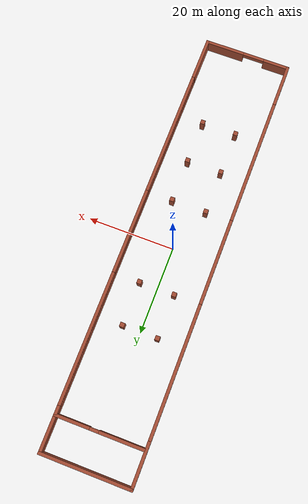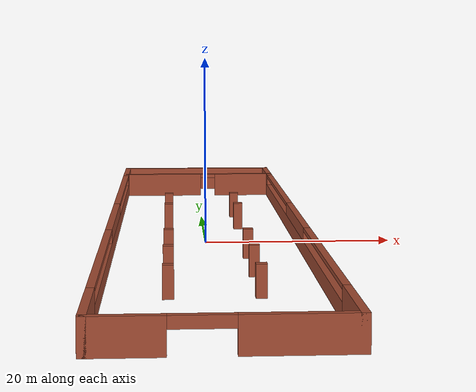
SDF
<?xml version='1.0'?>
<sdf version='1.6'>
  <model name='FactoryWorldModel'>
    <pose frame=''>0 0 0 0 -0 0</pose>
    <link name='Wall_10'>
      <pose frame=''>0 -50 0 0 -0 0</pose>
      <visual name='Wall_10_Visual_0'>
        <pose frame=''>-7.19666 0 1.5 0 -0 0</pose>
        <geometry>
          <box>
            <size>6.30668 0.7 3</size>
          </box>
        </geometry>
        <material>
          <script>
            <uri>file://media/materials/scripts/gazebo.material</uri>
            <name>Gazebo/Bricks</name>
          </script>
          <ambient>1 1 1 1</ambient>
        </material>
      </visual>
      <collision name='Wall_10_Collision_0'>
        <geometry>
          <box>
            <size>6.30668 0.7 3</size>
          </box>
        </geometry>
        <pose frame=''>-7.19666 0 1.5 0 -0 0</pose>
      </collision>
      <visual name='Wall_10_Visual_1'>
        <pose frame=''>5.65334 0 1.5 0 -0 0</pose>
        <geometry>
          <box>
            <size>9.39332 0.7 3</size>
          </box>
        </geometry>
        <material>
          <script>
            <uri>file://media/materials/scripts/gazebo.material</uri>
            <name>Gazebo/Bricks</name>
          </script>
          <ambient>1 1 1 1</ambient>
        </material>
      </visual>
      <collision name='Wall_10_Collision_1'>
        <geometry>
          <box>
            <size>9.39332 0.7 3</size>
          </box>
        </geometry>
        <pose frame=''>5.65334 0 1.5 0 -0 0</pose>
      </collision>
      <visual name='Wall_10_Visual_2'>
        <pose frame=''>-1.54332 0 2.5 0 -0 0</pose>
        <geometry>
          <box>
            <size>5 0.7 1</size>
          </box>
        </geometry>
        <material>
          <script>
            <uri>file://media/materials/scripts/gazebo.material</uri>
            <name>Gazebo/Bricks</name>
          </script>
          <ambient>1 1 1 1</ambient>
        </material>
      </visual>
      <collision name='Wall_10_Collision_2'>
        <geometry>
          <box>
            <size>5 0.7 1</size>
          </box>
        </geometry>
        <pose frame=''>-1.54332 0 2.5 0 -0 0</pose>
      </collision>
    </link>
    <link name='Wall_14'>
      <collision name='Wall_14_Collision'>
        <geometry>
          <box>
            <size>1 1 3</size>
          </box>
        </geometry>
        <pose frame=''>0 0 1.5 0 -0 0</pose>
      </collision>
      <visual name='Wall_14_Visual'>
        <pose frame=''>0 0 1.5 0 -0 0</pose>
        <geometry>
          <box>
            <size>1 1 3</size>
          </box>
        </geometry>
        <material>
          <script>
            <uri>file://media/materials/scripts/gazebo.material</uri>
            <name>Gazebo/Bricks</name>
          </script>
          <ambient>1 1 1 1</ambient>
        </material>
      </visual>
      <pose frame=''>4 -30 0 0 -0 0</pose>
    </link>
    <link name='Wall_16'>
      <collision name='Wall_16_Collision'>
        <geometry>
          <box>
            <size>1 1 3</size>
          </box>
        </geometry>
        <pose frame=''>0 0 1.5 0 -0 0</pose>
      </collision>
      <visual name='Wall_16_Visual'>
        <pose frame=''>0 0 1.5 0 -0 0</pose>
        <geometry>
          <box>
            <size>1 1 3</size>
          </box>
        </geometry>
        <material>
          <script>
            <uri>file://media/materials/scripts/gazebo.material</uri>
            <name>Gazebo/Bricks</name>
          </script>
          <ambient>1 1 1 1</ambient>
        </material>
      </visual>
      <pose frame=''>-4 -30 0 0 -0 0</pose>
    </link>
    <link name='Wall_18'>
      <collision name='Wall_18_Collision'>
        <geometry>
          <box>
            <size>1 1 3</size>
          </box>
        </geometry>
        <pose frame=''>0 0 1.5 0 -0 0</pose>
      </collision>
      <visual name='Wall_18_Visual'>
        <pose frame=''>0 0 1.5 0 -0 0</pose>
        <geometry>
          <box>
            <size>1 1 3</size>
          </box>
        </geometry>
        <material>
          <script>
            <uri>file://media/materials/scripts/gazebo.material</uri>
            <name>Gazebo/Bricks</name>
          </script>
          <ambient>1 1 1 1</ambient>
        </material>
      </visual>
      <pose frame=''>-4 -20 0 0 -0 0</pose>
    </link>
    <link name='Wall_2'>
      <collision name='Wall_2_Collision'>
        <geometry>
          <box>
            <size>20.7 0.7 3</size>
          </box>
        </geometry>
        <pose frame=''>0 0 1.5 0 -0 0</pose>
      </collision>
      <visual name='Wall_2_Visual'>
        <pose frame=''>0 0 1.5 0 -0 0</pose>
        <geometry>
          <box>
            <size>20.7 0.7 3</size>
          </box>
        </geometry>
        <material>
          <script>
            <uri>file://media/materials/scripts/gazebo.material</uri>
            <name>Gazebo/Bricks</name>
          </script>
          <ambient>1 1 1 1</ambient>
        </material>
      </visual>
      <pose frame=''>0 50 0 0 -0 0</pose>
    </link>
    <link name='Wall_20'>
      <collision name='Wall_20_Collision'>
        <geometry>
          <box>
            <size>1 1 3</size>
          </box>
        </geometry>
        <pose frame=''>0 0 1.5 0 -0 0</pose>
      </collision>
      <visual name='Wall_20_Visual'>
        <pose frame=''>0 0 1.5 0 -0 0</pose>
        <geometry>
          <box>
            <size>1 1 3</size>
          </box>
        </geometry>
        <material>
          <script>
            <uri>file://media/materials/scripts/gazebo.material</uri>
            <name>Gazebo/Bricks</name>
          </script>
          <ambient>1 1 1 1</ambient>
        </material>
      </visual>
      <pose frame=''>4 -20 0 0 -0 0</pose>
    </link>
    <link name='Wall_22'>
      <collision name='Wall_22_Collision'>
        <geometry>
          <box>
            <size>1 1 3</size>
          </box>
        </geometry>
        <pose frame=''>0 0 1.5 0 -0 0</pose>
      </collision>
      <visual name='Wall_22_Visual'>
        <pose frame=''>0 0 1.5 0 -0 0</pose>
        <geometry>
          <box>
            <size>1 1 3</size>
          </box>
        </geometry>
        <material>
          <script>
            <uri>file://media/materials/scripts/gazebo.material</uri>
            <name>Gazebo/Bricks</name>
          </script>
          <ambient>1 1 1 1</ambient>
        </material>
      </visual>
      <pose frame=''>-4 -10 0 0 -0 0</pose>
    </link>
    <link name='Wall_24'>
      <collision name='Wall_24_Collision'>
        <geometry>
          <box>
            <size>1 1 3</size>
          </box>
        </geometry>
        <pose frame=''>0 0 1.5 0 -0 0</pose>
      </collision>
      <visual name='Wall_24_Visual'>
        <pose frame=''>0 0 1.5 0 -0 0</pose>
        <geometry>
          <box>
            <size>1 1 3</size>
          </box>
        </geometry>
        <material>
          <script>
            <uri>file://media/materials/scripts/gazebo.material</uri>
            <name>Gazebo/Bricks</name>
          </script>
          <ambient>1 1 1 1</ambient>
        </material>
      </visual>
      <pose frame=''>4 -10 0 0 -0 0</pose>
    </link>
    <link name='Wall_26'>
      <collision name='Wall_26_Collision'>
        <geometry>
          <box>
            <size>1 1 3</size>
          </box>
        </geometry>
        <pose frame=''>0 0 1.5 0 -0 0</pose>
      </collision>
      <visual name='Wall_26_Visual'>
        <pose frame=''>0 0 1.5 0 -0 0</pose>
        <geometry>
          <box>
            <size>1 1 3</size>
          </box>
        </geometry>
        <material>
          <script>
            <uri>file://media/materials/scripts/gazebo.material</uri>
            <name>Gazebo/Bricks</name>
          </script>
          <ambient>1 1 1 1</ambient>
        </material>
      </visual>
      <pose frame=''>-4 10 0 0 -0 0</pose>
    </link>
    <link name='Wall_28'>
      <collision name='Wall_28_Collision'>
        <geometry>
          <box>
            <size>1 1 3</size>
          </box>
        </geometry>
        <pose frame=''>0 0 1.5 0 -0 0</pose>
      </collision>
      <visual name='Wall_28_Visual'>
        <pose frame=''>0 0 1.5 0 -0 0</pose>
        <geometry>
          <box>
            <size>1 1 3</size>
          </box>
        </geometry>
        <material>
          <script>
            <uri>file://media/materials/scripts/gazebo.material</uri>
            <name>Gazebo/Bricks</name>
          </script>
          <ambient>1 1 1 1</ambient>
        </material>
      </visual>
      <pose frame=''>4 10 0 0 -0 0</pose>
    </link>
    <link name='Wall_31'>
      <collision name='Wall_31_Collision'>
        <geometry>
          <box>
            <size>1 1 3</size>
          </box>
        </geometry>
        <pose frame=''>0 0 1.5 0 -0 0</pose>
      </collision>
      <visual name='Wall_31_Visual'>
        <pose frame=''>0 0 1.5 0 -0 0</pose>
        <geometry>
          <box>
            <size>1 1 3</size>
          </box>
        </geometry>
        <material>
          <script>
            <uri>file://media/materials/scripts/gazebo.material</uri>
            <name>Gazebo/Bricks</name>
          </script>
          <ambient>1 1 1 1</ambient>
        </material>
      </visual>
      <pose frame=''>4 20 0 0 -0 0</pose>
    </link>
    <link name='Wall_33'>
      <collision name='Wall_33_Collision'>
        <geometry>
          <box>
            <size>1 1 3</size>
          </box>
        </geometry>
        <pose frame=''>0 0 1.5 0 -0 0</pose>
      </collision>
      <visual name='Wall_33_Visual'>
        <pose frame=''>0 0 1.5 0 -0 0</pose>
        <geometry>
          <box>
            <size>1 1 3</size>
          </box>
        </geometry>
        <material>
          <script>
            <uri>file://media/materials/scripts/gazebo.material</uri>
            <name>Gazebo/Bricks</name>
          </script>
          <ambient>1 1 1 1</ambient>
        </material>
      </visual>
      <pose frame=''>-4 20 0 0 -0 0</pose>
    </link>
    <link name='Wall_37'>
      <pose frame=''>0 42 0 0 -0 0</pose>
      <visual name='Wall_37_Visual_0'>
        <pose frame=''>-4.97882 0 1.5 0 -0 0</pose>
        <geometry>
          <box>
            <size>10.7424 0.7 3</size>
          </box>
        </geometry>
        <material>
          <script>
            <uri>file://media/materials/scripts/gazebo.material</uri>
            <name>Gazebo/Bricks</name>
          </script>
          <ambient>1 1 1 1</ambient>
        </material>
      </visual>
      <collision name='Wall_37_Collision_0'>
        <geometry>
          <box>
            <size>10.7424 0.7 3</size>
          </box>
        </geometry>
        <pose frame=''>-4.97882 0 1.5 0 -0 0</pose>
      </collision>
      <visual name='Wall_37_Visual_1'>
        <pose frame=''>6.37118 0 1.5 0 -0 0</pose>
        <geometry>
          <box>
            <size>7.95763 0.7 3</size>
          </box>
        </geometry>
        <material>
          <script>
            <uri>file://media/materials/scripts/gazebo.material</uri>
            <name>Gazebo/Bricks</name>
          </script>
          <ambient>1 1 1 1</ambient>
        </material>
      </visual>
      <collision name='Wall_37_Collision_1'>
        <geometry>
          <box>
            <size>7.95763 0.7 3</size>
          </box>
        </geometry>
        <pose frame=''>6.37118 0 1.5 0 -0 0</pose>
      </collision>
      <visual name='Wall_37_Visual_2'>
        <pose frame=''>1.39237 0 2.75 0 -0 0</pose>
        <geometry>
          <box>
            <size>2 0.7 0.5</size>
          </box>
        </geometry>
        <material>
          <script>
            <uri>file://media/materials/scripts/gazebo.material</uri>
            <name>Gazebo/Bricks</name>
          </script>
          <ambient>1 1 1 1</ambient>
        </material>
      </visual>
      <collision name='Wall_37_Collision_2'>
        <geometry>
          <box>
            <size>2 0.7 0.5</size>
          </box>
        </geometry>
        <pose frame=''>1.39237 0 2.75 0 -0 0</pose>
      </collision>
    </link>
    <link name='Wall_4'>
      <pose frame=''>10 0 0 0 -0 1.5708</pose>
      <visual name='Wall_4_Visual_0'>
        <pose frame=''>-45.175 0 1.5 0 -0 0</pose>
        <geometry>
          <box>
            <size>10.35 0.7 3</size>
          </box>
        </geometry>
        <material>
          <script>
            <uri>file://media/materials/scripts/gazebo.material</uri>
            <name>Gazebo/Bricks</name>
          </script>
          <ambient>1 1 1 1</ambient>
        </material>
      </visual>
      <collision name='Wall_4_Collision_0'>
        <geometry>
          <box>
            <size>10.35 0.7 3</size>
          </box>
        </geometry>
        <pose frame=''>-45.175 0 1.5 0 -0 0</pose>
      </collision>
      <visual name='Wall_4_Visual_1'>
        <pose frame=''>5.175 0 0.8 0 -0 0</pose>
        <geometry>
          <box>
            <size>90.35 0.7 1.6</size>
          </box>
        </geometry>
        <material>
          <script>
            <uri>file://media/materials/scripts/gazebo.material</uri>
            <name>Gazebo/Bricks</name>
          </script>
          <ambient>1 1 1 1</ambient>
        </material>
      </visual>
      <collision name='Wall_4_Collision_1'>
        <geometry>
          <box>
            <size>90.35 0.7 1.6</size>
          </box>
        </geometry>
        <pose frame=''>5.175 0 0.8 0 -0 0</pose>
      </collision>
      <visual name='Wall_4_Visual_2'>
        <pose frame=''>0 0 2.3 0 -0 0</pose>
        <geometry>
          <box>
            <size>20 0.7 1.4</size>
          </box>
        </geometry>
        <material>
          <script>
            <uri>file://media/materials/scripts/gazebo.material</uri>
            <name>Gazebo/Bricks</name>
          </script>
          <ambient>1 1 1 1</ambient>
        </material>
      </visual>
      <collision name='Wall_4_Collision_2'>
        <geometry>
          <box>
            <size>20 0.7 1.4</size>
          </box>
        </geometry>
        <pose frame=''>0 0 2.3 0 -0 0</pose>
      </collision>
      <visual name='Wall_4_Visual_3'>
        <pose frame=''>45.175 0 2.3 0 -0 0</pose>
        <geometry>
          <box>
            <size>10.35 0.7 1.4</size>
          </box>
        </geometry>
        <material>
          <script>
            <uri>file://media/materials/scripts/gazebo.material</uri>
            <name>Gazebo/Bricks</name>
          </script>
          <ambient>1 1 1 1</ambient>
        </material>
      </visual>
      <collision name='Wall_4_Collision_3'>
        <geometry>
          <box>
            <size>10.35 0.7 1.4</size>
          </box>
        </geometry>
        <pose frame=''>45.175 0 2.3 0 -0 0</pose>
      </collision>
      <visual name='Wall_4_Visual_4'>
        <pose frame=''>-25 0 2.8 0 -0 0</pose>
        <geometry>
          <box>
            <size>30 0.7 0.4</size>
          </box>
        </geometry>
        <material>
          <script>
            <uri>file://media/materials/scripts/gazebo.material</uri>
            <name>Gazebo/Bricks</name>
          </script>
          <ambient>1 1 1 1</ambient>
        </material>
      </visual>
      <collision name='Wall_4_Collision_4'>
        <geometry>
          <box>
            <size>30 0.7 0.4</size>
          </box>
        </geometry>
        <pose frame=''>-25 0 2.8 0 -0 0</pose>
      </collision>
      <visual name='Wall_4_Visual_5'>
        <pose frame=''>25 0 2.8 0 -0 0</pose>
        <geometry>
          <box>
            <size>30 0.7 0.4</size>
          </box>
        </geometry>
        <material>
          <script>
            <uri>file://media/materials/scripts/gazebo.material</uri>
            <name>Gazebo/Bricks</name>
          </script>
          <ambient>1 1 1 1</ambient>
        </material>
      </visual>
      <collision name='Wall_4_Collision_5'>
        <geometry>
          <box>
            <size>30 0.7 0.4</size>
          </box>
        </geometry>
        <pose frame=''>25 0 2.8 0 -0 0</pose>
      </collision>
    </link>
    <link name='Wall_6'>
      <pose frame=''>-10 0 0 0 -0 1.5708</pose>
      <visual name='Wall_6_Visual_0'>
        <pose frame=''>-45.175 0 1.5 0 -0 0</pose>
        <geometry>
          <box>
            <size>10.35 0.7 3</size>
          </box>
        </geometry>
        <material>
          <script>
            <uri>file://media/materials/scripts/gazebo.material</uri>
            <name>Gazebo/Bricks</name>
          </script>
          <ambient>1 1 1 1</ambient>
        </material>
      </visual>
      <collision name='Wall_6_Collision_0'>
        <geometry>
          <box>
            <size>10.35 0.7 3</size>
          </box>
        </geometry>
        <pose frame=''>-45.175 0 1.5 0 -0 0</pose>
      </collision>
      <visual name='Wall_6_Visual_1'>
        <pose frame=''>5.175 0 0.8 0 -0 0</pose>
        <geometry>
          <box>
            <size>90.35 0.7 1.6</size>
          </box>
        </geometry>
        <material>
          <script>
            <uri>file://media/materials/scripts/gazebo.material</uri>
            <name>Gazebo/Bricks</name>
          </script>
          <ambient>1 1 1 1</ambient>
        </material>
      </visual>
      <collision name='Wall_6_Collision_1'>
        <geometry>
          <box>
            <size>90.35 0.7 1.6</size>
          </box>
        </geometry>
        <pose frame=''>5.175 0 0.8 0 -0 0</pose>
      </collision>
      <visual name='Wall_6_Visual_2'>
        <pose frame=''>0 0 2.3 0 -0 0</pose>
        <geometry>
          <box>
            <size>20 0.7 1.4</size>
          </box>
        </geometry>
        <material>
          <script>
            <uri>file://media/materials/scripts/gazebo.material</uri>
            <name>Gazebo/Bricks</name>
          </script>
          <ambient>1 1 1 1</ambient>
        </material>
      </visual>
      <collision name='Wall_6_Collision_2'>
        <geometry>
          <box>
            <size>20 0.7 1.4</size>
          </box>
        </geometry>
        <pose frame=''>0 0 2.3 0 -0 0</pose>
      </collision>
      <visual name='Wall_6_Visual_3'>
        <pose frame=''>45.175 0 2.3 0 -0 0</pose>
        <geometry>
          <box>
            <size>10.35 0.7 1.4</size>
          </box>
        </geometry>
        <material>
          <script>
            <uri>file://media/materials/scripts/gazebo.material</uri>
            <name>Gazebo/Bricks</name>
          </script>
          <ambient>1 1 1 1</ambient>
        </material>
      </visual>
      <collision name='Wall_6_Collision_3'>
        <geometry>
          <box>
            <size>10.35 0.7 1.4</size>
          </box>
        </geometry>
        <pose frame=''>45.175 0 2.3 0 -0 0</pose>
      </collision>
      <visual name='Wall_6_Visual_4'>
        <pose frame=''>-25 0 2.8 0 -0 0</pose>
        <geometry>
          <box>
            <size>30 0.7 0.4</size>
          </box>
        </geometry>
        <material>
          <script>
            <uri>file://media/materials/scripts/gazebo.material</uri>
            <name>Gazebo/Bricks</name>
          </script>
          <ambient>1 1 1 1</ambient>
        </material>
      </visual>
      <collision name='Wall_6_Collision_4'>
        <geometry>
          <box>
            <size>30 0.7 0.4</size>
          </box>
        </geometry>
        <pose frame=''>-25 0 2.8 0 -0 0</pose>
      </collision>
      <visual name='Wall_6_Visual_5'>
        <pose frame=''>25 0 2.8 0 -0 0</pose>
        <geometry>
          <box>
            <size>30 0.7 0.4</size>
          </box>
        </geometry>
        <material>
          <script>
            <uri>file://media/materials/scripts/gazebo.material</uri>
            <name>Gazebo/Bricks</name>
          </script>
          <ambient>1 1 1 1</ambient>
        </material>
      </visual>
      <collision name='Wall_6_Collision_5'>
        <geometry>
          <box>
            <size>30 0.7 0.4</size>
          </box>
        </geometry>
        <pose frame=''>25 0 2.8 0 -0 0</pose>
      </collision>
    </link>
    <static>1</static>
  </model>
</sdf>
